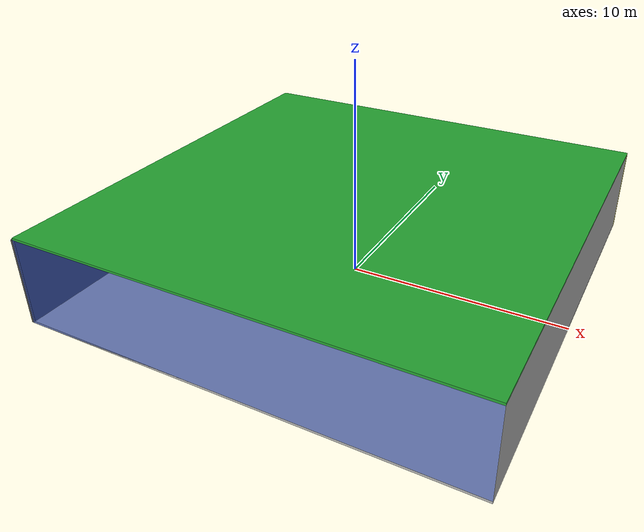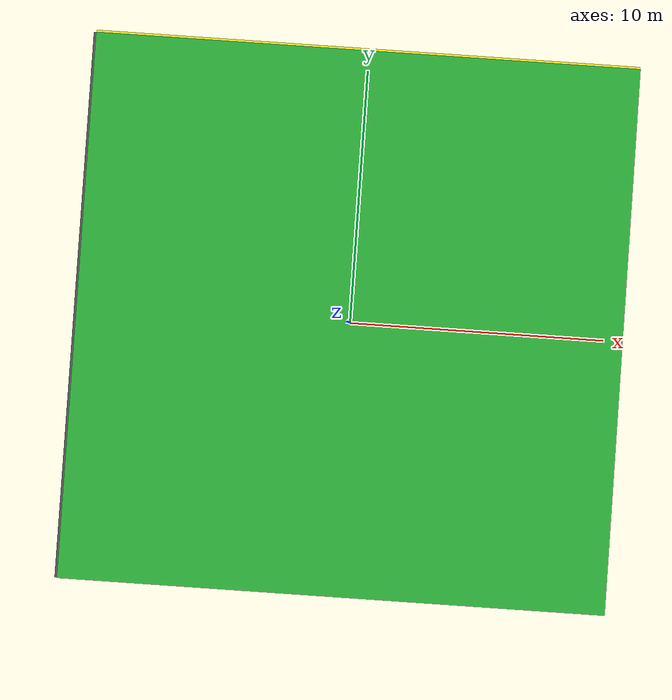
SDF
<sdf version="1.4">
 <world name="default">
  <physics type="ode">
   <max_step_size>0.001</max_step_size>
   <real_time_factor>1</real_time_factor>
   <real_time_update_rate>1000</real_time_update_rate>
   <gravity>0 0 -9.8</gravity>
  </physics>
  <scene><ambient>0.4 0.4 0.4 1</ambient><background>0.7 0.7 0.7 1</background><shadows>1</shadows></scene>
  <model name="Surrounding">
   <static>1</static>
   <link name="Ceiling">
    <collision name="Ceiling_Collision"><geometry><box><size>20 20 0.1</size></box></geometry></collision>
    <visual name="Ceiling_Visual">
     <geometry><box><size>20 20 0.1</size></box></geometry>
     <material>
      <script><uri>file://media/materials/scripts/gazebo.material</uri><name>Gazebo/GreenGlow</name></script>
     </material>
    </visual>
    <pose>0 0 4.05 0 0 0</pose>
   </link>
   <link name="Wall_South">
    <collision name="Wall_South_Collision">
     <geometry><box><size>20 0 4</size></box></geometry>
     <pose>0 0 2 0 -0 0</pose>
    </collision>
    <visual name="Wall_South_Visual">
     <pose>0 0 2 0 -0 0</pose>
     <geometry><box><size>20 0 4</size></box></geometry>
     <material>
      <script><uri>file://media/materials/scripts/gazebo.material</uri><name>Gazebo/BlueTransparent</name></script>
     </material>
    </visual>
    <velocity_decay><linear>0</linear><angular>0</angular></velocity_decay>
    <pose>0 -10 0 0 -0 0</pose>
   </link>
   <link name="Wall_East">
    <collision name="Wall_21_Collision">
     <geometry><box><size>20 0 4</size></box></geometry>
     <pose>0 0 2 0 -0 0</pose>
    </collision>
    <visual name="Wall_21_Visual">
     <pose>0 0 2 0 -0 0</pose>
     <geometry><box><size>20 0 4</size></box></geometry>
     <material>
      <script><uri>file://media/materials/scripts/gazebo.material</uri><name>Gazebo/Pioneer2Body</name></script>
     </material>
    </visual>
    <velocity_decay><linear>0</linear><angular>0</angular></velocity_decay>
    <pose>10 0 0 0 -0 1.5708</pose>
   </link>
   <link name="Wall_North">
    <collision name="Wall_22_Collision">
     <geometry><box><size>20 0.2 4</size></box></geometry>
     <pose>0 0 2 0 -0 0</pose>
    </collision>
    <visual name="Wall_22_Visual">
     <pose>0 0 2 0 -0 0</pose>
     <geometry><box><size>20 0.2 4</size></box></geometry>
     <material>
      <script><uri>file://media/materials/scripts/gazebo.material</uri><name>Gazebo/Yellow</name></script>
     </material>
    </visual>
    <velocity_decay><linear>0</linear><angular>0</angular></velocity_decay>
    <pose>0 10 0 0 -0 0</pose>
   </link>
   <link name="Wall_West">
    <collision name="Wall_23_Collision">
     <geometry><box><size>20 0.2 4</size></box></geometry>
     <pose>0 0 2 0 -0 0</pose>
    </collision>
    <visual name="Wall_23_Visual">
     <pose>0 0 2 0 -0 0</pose>
     <geometry><box><size>20 0.2 4</size></box></geometry>
     <material>
      <script><uri>file://media/materials/scripts/gazebo.material</uri><name>Gazebo/Road</name></script>
     </material>
    </visual>
    <velocity_decay><linear>0</linear><angular>0</angular></velocity_decay>
    <pose>-10 0 0 0 0 -1.5708</pose>
   </link>
   <link name="Ground_link">
    <collision name="collision">
     <pose>0 0 .05 0 -0 0</pose>
     <geometry><box><size>20 20 0.1</size></box></geometry>
    </collision>
    <visual name="visual">
     <pose>0 0 .05 0 -0 0</pose>
     <geometry><box><size>20 20 0.1</size></box></geometry>
     <material>
      <script><uri>file://media/materials/scripts/gazebo.material</uri><name>Gazebo/LightOff</name></script>
     </material>
    </visual>
   </link>
   <static>1</static>
  </model>
  <spherical_coordinates>
   <surface_model>EARTH_WGS84</surface_model>
   <latitude_deg>0</latitude_deg>
   <longitude_deg>0</longitude_deg>
   <elevation>0</elevation>
   <heading_deg>0</heading_deg>
  </spherical_coordinates>
  <light name="lightball_0" type="diffuse">
   <diffuse>0.8 0.8 0.8 1</diffuse>
   <specular>0.2 0.2 0.2 1</specular>
   <attenuation>
    <range>100</range>
    <constant>0.7</constant>
    <linear>0.01</linear>
    <quadratic>0.001</quadratic>
   </attenuation>
   <direction>-0.5 0.1 -0.9</direction>
   <pose>-1.16447212586 1.631134443 1.49565416143 0 0 0</pose>
  </light>
  <light name="lightball_1" type="diffuse">
   <diffuse>0.8 0.8 0.8 1</diffuse>
   <specular>0.2 0.2 0.2 1</specular>
   <attenuation>
    <range>100</range>
    <constant>0.7</constant>
    <linear>0.01</linear>
    <quadratic>0.001</quadratic>
   </attenuation>
   <direction>-0.5 0.1 -0.9</direction>
   <pose>1.78186593569 9.24300429111 1.60102847225 0 0 0</pose>
  </light>
  <light name="lightball_2" type="diffuse">
   <diffuse>0.8 0.8 0.8 1</diffuse>
   <specular>0.2 0.2 0.2 1</specular>
   <attenuation>
    <range>100</range>
    <constant>0.7</constant>
    <linear>0.01</linear>
    <quadratic>0.001</quadratic>
   </attenuation>
   <direction>-0.5 0.1 -0.9</direction>
   <pose>-4.72007052212 -0.151568286685 1.60242654845 0 0 0</pose>
  </light>
  <light name="lightball_3" type="diffuse">
   <diffuse>0.8 0.8 0.8 1</diffuse>
   <specular>0.2 0.2 0.2 1</specular>
   <attenuation>
    <range>100</range>
    <constant>0.7</constant>
    <linear>0.01</linear>
    <quadratic>0.001</quadratic>
   </attenuation>
   <direction>-0.5 0.1 -0.9</direction>
   <pose>9.08286144989 4.97555720501 3.03909345445 0 0 0</pose>
  </light>
  <include><uri>model://cabinet</uri><pose>2.6357066711 -2.37257998939 0 0 0 2.10243450551</pose></include>
  <include>
   <uri>model://robocup_3Dsim_goal</uri>
   <pose>4.80412354988 2.15439288869 0 0 0 1.55333496259</pose>
  </include>
  <include><uri>model://cabinet</uri><pose>3.99412642215 3.58551161853 0 0 0 1.13226407705</pose></include>
 </world>
</sdf>

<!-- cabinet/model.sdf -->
<sdf version="1.5">
  <model name="cabinet">
    <static>true</static>
    <link name="cabinet_bottom_plate">
      <inertial>
        <pose>0 0 -1 0 0 0</pose>
        <inertia>
          <ixx>2.050000</ixx>
          <ixy>0</ixy>
          <ixz>0</ixz>
          <iyy>2.050000</iyy>
          <iyz>0</iyz>
          <izz>2.050000</izz>
        </inertia>
        <mass>25.000000</mass>
      </inertial>
      <collision name="cabinet_bottom_plate_geom">
        <pose>0 0 0.010000 0 0 0</pose>
        <geometry>
          <box>
            <size>0.450000 0.450000 0.020000</size>
          </box>
        </geometry>
      </collision>
      <visual name="cabinet_bottom_plate_geom_visual">
        <pose>0 0 0.010000 0 0 0</pose>
        <geometry>
          <box>
            <size>0.450000 0.450000 0.020000</size>
          </box>
        </geometry>
        <material>
          <script>
            <uri>model://media/materials/scripts/gazebo.material</uri>
            <name>Gazebo/Wood</name>
          </script>
        </material>
      </visual>
      <collision name="cabinet_bottom_plate_geom_cabinet_back_plate">
        <pose>0.235000 0 0.510000 0 0 0</pose>
        <geometry>
          <box>
            <size>0.020000 0.450000 1.020000</size>
          </box>
        </geometry>
      </collision>
      <visual name="cabinet_bottom_plate_geom_cabinet_back_plate_visual">
        <pose>0.235000 0 0.510000 0 0 0</pose>
        <geometry>
          <box>
            <size>0.020000 0.450000 1.020000</size>
          </box>
        </geometry>
        <material>
          <script>
            <uri>model://media/materials/scripts/gazebo.material</uri>
            <name>Gazebo/Wood</name>
          </script>
        </material>
      </visual>
      <collision name="cabinet_bottom_plate_geom_cabinet_left_plate">
        <pose>0 0.235000 0.510000 0 0 0</pose>
        <geometry>
          <box>
            <size>0.450000 0.020000 1.020000</size>
          </box>
        </geometry>
      </collision>
      <visual name="cabinet_bottom_plate_geom_cabinet_left_plate_visual">
        <pose>0 0.235000 0.510000 0 0 0</pose>
        <geometry>
          <box>
            <size>0.450000 0.020000 1.020000</size>
          </box>
        </geometry>
        <material>
          <script>
            <uri>model://media/materials/scripts/gazebo.material</uri>
            <name>Gazebo/Wood</name>
          </script>
        </material>
      </visual>
      <collision name="cabinet_bottom_plate_geom_cabinet_middle_plate">
        <pose>0 0 0.510000 0 0 0</pose>
        <geometry>
          <box>
            <size>0.450000 0.450000 0.020000</size>
          </box>
        </geometry>
      </collision>
      <visual name="cabinet_bottom_plate_geom_cabinet_middle_plate_visual">
        <pose>0 0 0.510000 0 0 0</pose>
        <geometry>
          <box>
            <size>0.450000 0.450000 0.020000</size>
          </box>
        </geometry>
        <material>
          <script>
            <uri>model://media/materials/scripts/gazebo.material</uri>
            <name>Gazebo/Wood</name>
          </script>
        </material>
      </visual>
      <collision name="cabinet_bottom_plate_geom_cabinet_right_plate">
        <pose>0 -0.235000 0.510000 0 0 0</pose>
        <geometry>
          <box>
            <size>0.450000 0.020000 1.020000</size>
          </box>
        </geometry>
      </collision>
      <visual name="cabinet_bottom_plate_geom_cabinet_right_plate_visual">
        <pose>0 -0.235000 0.510000 0 0 0</pose>
        <geometry>
          <box>
            <size>0.450000 0.020000 1.020000</size>
          </box>
        </geometry>
        <material>
          <script>
            <uri>model://media/materials/scripts/gazebo.material</uri>
            <name>Gazebo/Wood</name>
          </script>
        </material>
      </visual>
      <collision name="cabinet_bottom_plate_geom_cabinet_top_plate">
        <pose>0 0 1.010000 0 0 0</pose>
        <geometry>
          <box>
            <size>0.450000 0.450000 0.020000</size>
          </box>
        </geometry>
      </collision>
      <visual name="cabinet_bottom_plate_geom_cabinet_top_plate_visual">
        <pose>0 0 1.010000 0 0 0</pose>
        <geometry>
          <box>
            <size>0.450000 0.450000 0.020000</size>
          </box>
        </geometry>
        <material>
          <script>
            <uri>model://media/materials/scripts/gazebo.material</uri>
            <name>Gazebo/Wood</name>
          </script>
        </material>
      </visual>
    </link>
  </model>
</sdf>

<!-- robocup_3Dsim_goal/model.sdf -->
<sdf version="1.5">
  <model name="robocup_3d_goal">
    <static>true</static>
    <link name="left_post">
      <pose>0 1.05 0.45 0 0 0</pose>
      <collision name="collision">
        <geometry>
          <cylinder>
            <radius>0.05</radius>
            <length>0.9</length>
          </cylinder>
        </geometry>
      </collision>
      <visual name="visual">
        <geometry>
          <cylinder>
            <radius>0.05</radius>
            <length>0.9</length>
          </cylinder>
        </geometry>
        <material>
          <script>
            <uri>file://media/materials/scripts/gazebo.material</uri>
            <name>Gazebo/ZincYellow</name>
          </script>
        </material>
      </visual>
    </link>
    <link name="left_support_horiz_lower">
      <pose>0.30 1.05 0.01 0 0 0</pose>
      <collision name="collision">
        <geometry>
          <box>
            <size>0.50 0.02 0.02</size>
          </box>
        </geometry>
      </collision>
      <visual name="visual">
        <geometry>
          <box>
            <size>0.50 0.02 0.02</size>
          </box>
        </geometry>
        <material>
          <script>
            <uri>file://media/materials/scripts/gazebo.material</uri>
            <name>Gazebo/White</name>
          </script>
        </material>
      </visual>
    </link>
    <link name="left_support_horiz_upper">
      <pose>0.30 1.05 0.79 0 0 0</pose>
      <collision name="collision">
        <geometry>
          <box>
            <size>0.50 0.02 0.02</size>
          </box>
        </geometry>
      </collision>
      <visual name="visual">
        <geometry>
          <box>
            <size>0.50 0.02 0.02</size>
          </box>
        </geometry>
        <material>
          <script>
            <uri>file://media/materials/scripts/gazebo.material</uri>
            <name>Gazebo/White</name>
          </script>
        </material>
      </visual>
    </link>
    <link name="left_support_vertical">
      <pose>0.56 1.05 0.4 0 1.5708 0</pose>
      <collision name="collision">
        <geometry>
          <box>
            <size>0.80 0.02 0.02</size>
          </box>
        </geometry>
      </collision>
      <visual name="visual">
        <geometry>
          <box>
            <size>0.80 0.02 0.02</size>
          </box>
        </geometry>
        <material>
          <script>
            <uri>file://media/materials/scripts/gazebo.material</uri>
            <name>Gazebo/White</name>
          </script>
        </material>
      </visual>
    </link>
    <link name="right_support_horiz_lower">
      <pose>0.30 -1.05 0.01 0 0 0</pose>
      <collision name="collision">
        <geometry>
          <box>
            <size>0.50 0.02 0.02</size>
          </box>
        </geometry>
      </collision>
      <visual name="visual">
        <geometry>
          <box>
            <size>0.50 0.02 0.02</size>
          </box>
        </geometry>
        <material>
          <script>
            <uri>file://media/materials/scripts/gazebo.material</uri>
            <name>Gazebo/White</name>
          </script>
        </material>
      </visual>
    </link>
    <link name="right_support_horiz_upper">
      <pose>0.30 -1.05 0.79 0 0 0</pose>
      <collision name="collision">
        <geometry>
          <box>
            <size>0.50 0.02 0.02</size>
          </box>
        </geometry>
      </collision>
      <visual name="visual">
        <geometry>
          <box>
            <size>0.50 0.02 0.02</size>
          </box>
        </geometry>
        <material>
          <script>
            <uri>file://media/materials/scripts/gazebo.material</uri>
            <name>Gazebo/White</name>
          </script>
        </material>
      </visual>
    </link>
    <link name="right_support_vertical">
      <pose>0.56 -1.05 0.4 0 1.5708 0</pose>
      <collision name="collision">
        <geometry>
          <box>
            <size>0.80 0.02 0.02</size>
          </box>
        </geometry>
      </collision>
      <visual name="visual">
        <geometry>
          <box>
            <size>0.80 0.02 0.02</size>
          </box>
        </geometry>
        <material>
          <script>
            <uri>file://media/materials/scripts/gazebo.material</uri>
            <name>Gazebo/White</name>
          </script>
        </material>
      </visual>
    </link>
    <link name="center_support_horiz_lower">
      <pose>0.56 0 0.01 0 1.5708 0</pose>
      <collision name="collision">
        <geometry>
          <box>
            <size>0.02 2.08 0.02</size>
          </box>
        </geometry>
      </collision>
      <visual name="visual">
        <geometry>
          <box>
            <size>0.02 2.08 0.02</size>
          </box>
        </geometry>
        <material>
          <script>
            <uri>file://media/materials/scripts/gazebo.material</uri>
            <name>Gazebo/White</name>
          </script>
        </material>
      </visual>
    </link>
    <link name="center_support_horiz_upper">
      <pose>0.56 0 0.79 0 1.5708 0</pose>
      <collision name="collision">
        <geometry>
          <box>
            <size>0.02 2.08 0.02</size>
          </box>
        </geometry>
      </collision>
      <visual name="visual">
        <geometry>
          <box>
            <size>0.02 2.08 0.02</size>
          </box>
        </geometry>
        <material>
          <script>
            <uri>file://media/materials/scripts/gazebo.material</uri>
            <name>Gazebo/White</name>
          </script>
        </material>
      </visual>
    </link>
    <link name="right_post">
      <pose>0 -1.05 0.45 0 0 0</pose>
      <collision name="collision">
        <geometry>
          <cylinder>
            <radius>0.05</radius>
            <length>0.9</length>
          </cylinder>
        </geometry>
      </collision>
      <visual name="visual">
        <geometry>
          <cylinder>
            <radius>0.05</radius>
            <length>0.9</length>
          </cylinder>
        </geometry>
        <material>
          <script>
            <uri>file://media/materials/scripts/gazebo.material</uri>
            <name>Gazebo/ZincYellow</name>
          </script>
        </material>
      </visual>
    </link>
    <link name="crossbar">
      <pose>0 0 0.85 1.57 1.57 0</pose>
      <collision name="collision">
        <geometry>
          <cylinder>
            <radius>0.05</radius>
            <length>2.0</length>
          </cylinder>
        </geometry>
      </collision>
      <visual name="visual">
        <geometry>
          <cylinder>
            <radius>0.05</radius>
            <length>2.0</length>
          </cylinder>
        </geometry>
        <material>
          <script>
            <uri>file://media/materials/scripts/gazebo.material</uri>
            <name>Gazebo/ZincYellow</name>
          </script>
        </material>
      </visual>
    </link>
    <link name="center_net">
      <pose>0.56 0 0.40 0 0 0</pose>
      <collision name="collision">
        <geometry>
          <box>
            <size>0.01 2.1 0.80</size>
          </box>
        </geometry>
      </collision>
      <visual name="visual">
        <geometry>
          <box>
            <size>0.01 2.1 0.80</size>
          </box>
        </geometry>
        <material>
          <script>
            <uri>model://../model_source/models/robocup09_spl_field/materials/scripts/</uri>
            <uri>model://../model_source/models/robocup09_spl_field/materials/textures/</uri>
            <name>RoboCup/Net</name>
          </script>
        </material>
      </visual>
    </link>
    <link name="left_net">
      <pose>0.30 1.05 0.40 0 0 0</pose>
      <collision name="collision">
        <geometry>
          <box>
            <size>0.50 0.01 0.76</size>
          </box>
        </geometry>
      </collision>
      <visual name="visual">
        <geometry>
          <box>
            <size>0.50 0.01 0.76</size>
          </box>
        </geometry>
        <material>
          <script>
            <uri>model://../model_source/models/robocup09_spl_field/materials/scripts/</uri>
            <uri>model://../model_source/models/robocup09_spl_field/materials/textures/</uri>
            <name>RoboCup/Net</name>
          </script>
        </material>
      </visual>
    </link>
    <link name="right_net">
      <pose>0.30 -1.05 0.40 0 0 0</pose>
      <collision name="collision">
        <geometry>
          <box>
            <size>0.50 0.01 0.76</size>
          </box>
        </geometry>
      </collision>
      <visual name="visual">
        <geometry>
          <box>
            <size>0.50 0.01 0.76</size>
          </box>
        </geometry>
        <material>
          <script>
            <uri>model://../model_source/models/robocup09_spl_field/materials/scripts/</uri>
            <uri>model://../model_source/models/robocup09_spl_field/materials/textures/</uri>
            <name>RoboCup/Net</name>
          </script>
        </material>
      </visual>
    </link>
  </model>
</sdf>
